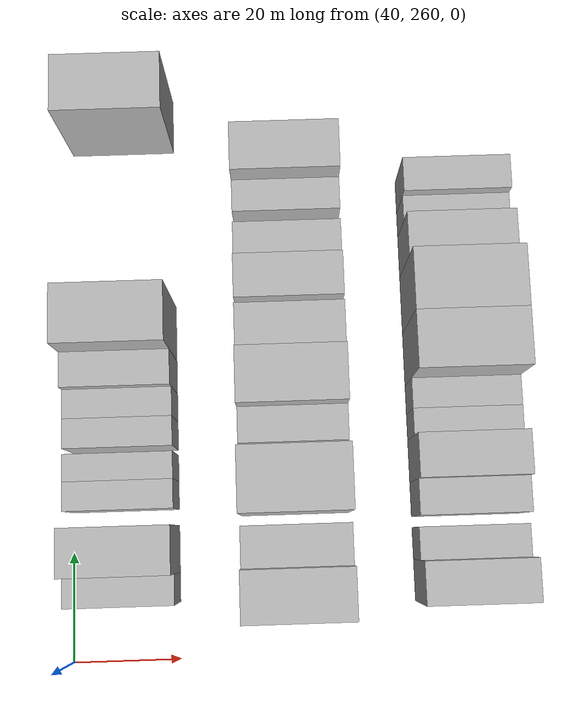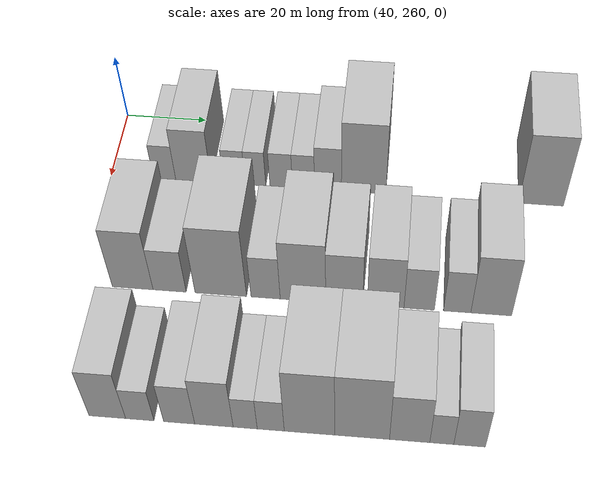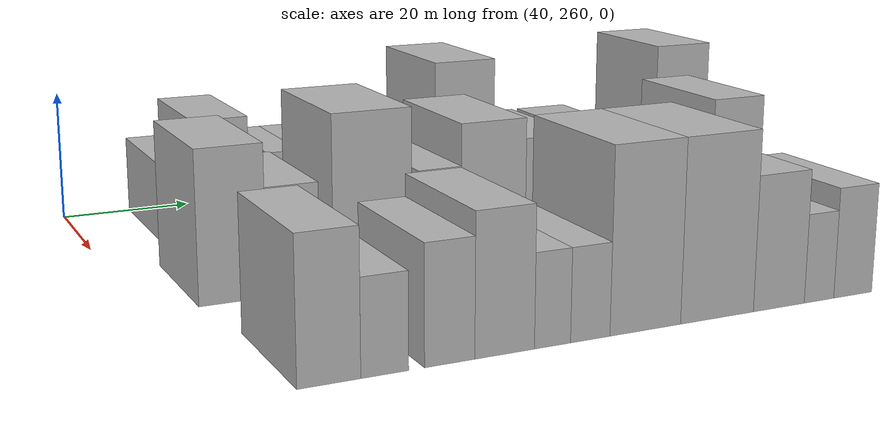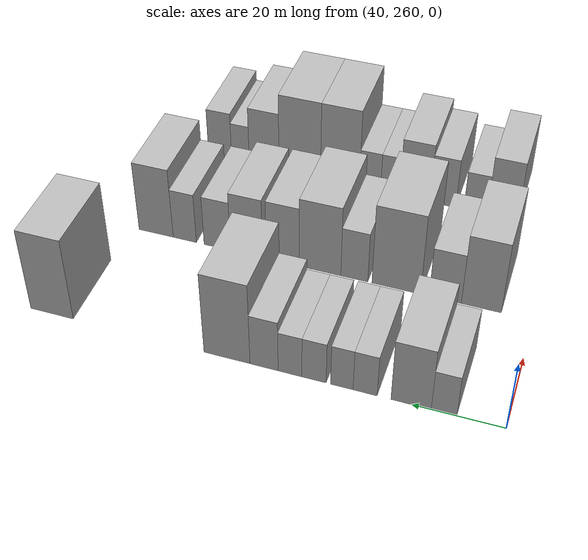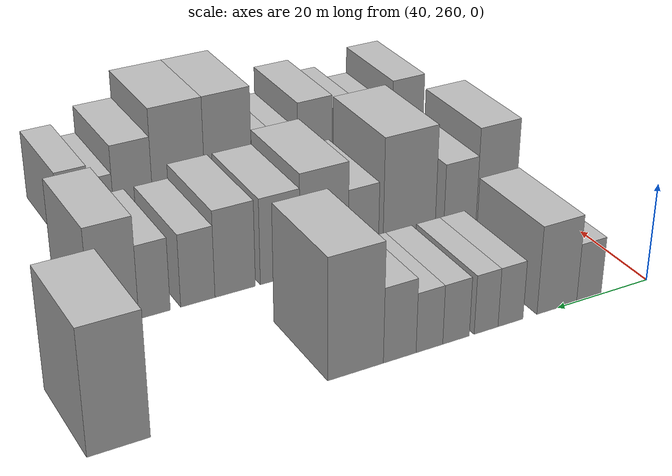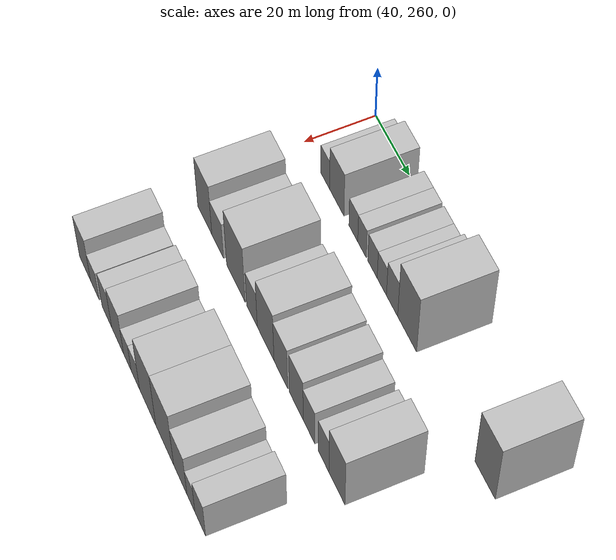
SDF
<sdf version="1.6">
 <world name="default">
  <model name="building_68">
   <static>1</static>
   <pose>50.0000 273.1495 0 0.000000 0.000000 0.000000</pose>
   <link name="link">
    <pose>0 0 6.00 0 0 0</pose>
    <collision name="collision"><geometry><box><size>20.0000 5.4594 12.0000</size></box></geometry></collision>
    <visual name="visual">
     <cast_shadows>0</cast_shadows>
     <geometry><box><size>20.0000 5.4594 12.0000</size></box></geometry>
     <material>
      <script>
       <uri>model://HANNAS_wall/materials/scripts</uri>
       <uri>model://HANNAS_wall/materials/textures</uri>
       <name>vrc/HANNAS_wall</name>
      </script>
     </material>
    </visual>
   </link>
  </model>
  <model name="building_69">
   <static>1</static>
   <pose>50.0000 280.2199 0 0.000000 0.000000 0.000000</pose>
   <link name="link">
    <pose>0 0 9.00 0 0 0</pose>
    <collision name="collision"><geometry><box><size>20.0000 8.6815 18.0000</size></box></geometry></collision>
    <visual name="visual">
     <cast_shadows>0</cast_shadows>
     <geometry><box><size>20.0000 8.6815 18.0000</size></box></geometry>
     <material>
      <script>
       <uri>model://HANNAS_wall/materials/scripts</uri>
       <uri>model://HANNAS_wall/materials/textures</uri>
       <name>vrc/HANNAS_wall</name>
      </script>
     </material>
    </visual>
   </link>
  </model>
  <model name="building_70">
   <static>1</static>
   <pose>50.0000 290.2087 0 0.000000 0.000000 0.000000</pose>
   <link name="link">
    <pose>0 0 6.00 0 0 0</pose>
    <collision name="collision"><geometry><box><size>20.0000 5.2961 12.0000</size></box></geometry></collision>
    <visual name="visual">
     <cast_shadows>0</cast_shadows>
     <geometry><box><size>20.0000 5.2961 12.0000</size></box></geometry>
     <material>
      <script>
       <uri>model://HANNAS_wall/materials/scripts</uri>
       <uri>model://HANNAS_wall/materials/textures</uri>
       <name>vrc/HANNAS_wall</name>
      </script>
     </material>
    </visual>
   </link>
  </model>
  <model name="building_71">
   <static>1</static>
   <pose>50.0000 295.3482 0 0.000000 0.000000 0.000000</pose>
   <link name="link">
    <pose>0 0 6.00 0 0 0</pose>
    <collision name="collision"><geometry><box><size>20.0000 4.9829 12.0000</size></box></geometry></collision>
    <visual name="visual">
     <cast_shadows>0</cast_shadows>
     <geometry><box><size>20.0000 4.9829 12.0000</size></box></geometry>
     <material>
      <script>
       <uri>model://HANNAS_wall/materials/scripts</uri>
       <uri>model://HANNAS_wall/materials/textures</uri>
       <name>vrc/HANNAS_wall</name>
      </script>
     </material>
    </visual>
   </link>
  </model>
  <model name="building_72">
   <static>1</static>
   <pose>50.0000 301.5589 0 0.000000 0.000000 0.000000</pose>
   <link name="link">
    <pose>0 0 6.00 0 0 0</pose>
    <collision name="collision"><geometry><box><size>20.0000 5.4385 12.0000</size></box></geometry></collision>
    <visual name="visual">
     <cast_shadows>0</cast_shadows>
     <geometry><box><size>20.0000 5.4385 12.0000</size></box></geometry>
     <material>
      <script>
       <uri>model://HANNAS_wall/materials/scripts</uri>
       <uri>model://HANNAS_wall/materials/textures</uri>
       <name>vrc/HANNAS_wall</name>
      </script>
     </material>
    </visual>
   </link>
  </model>
  <model name="building_73">
   <static>1</static>
   <pose>50.0000 306.9627 0 0.000000 0.000000 0.000000</pose>
   <link name="link">
    <pose>0 0 6.00 0 0 0</pose>
    <collision name="collision"><geometry><box><size>20.0000 5.3692 12.0000</size></box></geometry></collision>
    <visual name="visual">
     <cast_shadows>0</cast_shadows>
     <geometry><box><size>20.0000 5.3692 12.0000</size></box></geometry>
     <material>
      <script>
       <uri>model://HANNAS_wall/materials/scripts</uri>
       <uri>model://HANNAS_wall/materials/textures</uri>
       <name>vrc/HANNAS_wall</name>
      </script>
     </material>
    </visual>
   </link>
  </model>
  <model name="building_74">
   <static>1</static>
   <pose>50.0000 312.8742 0 0.000000 0.000000 0.000000</pose>
   <link name="link">
    <pose>0 0 7.50 0 0 0</pose>
    <collision name="collision"><geometry><box><size>20.0000 6.4538 15.0000</size></box></geometry></collision>
    <visual name="visual">
     <cast_shadows>0</cast_shadows>
     <geometry><box><size>20.0000 6.4538 15.0000</size></box></geometry>
     <material>
      <script>
       <uri>model://HANNAS_wall/materials/scripts</uri>
       <uri>model://HANNAS_wall/materials/textures</uri>
       <name>vrc/HANNAS_wall</name>
      </script>
     </material>
    </visual>
   </link>
  </model>
  <model name="building_75">
   <static>1</static>
   <pose>50.0000 321.4461 0 0.000000 0.000000 0.000000</pose>
   <link name="link">
    <pose>0 0 12.00 0 0 0</pose>
    <collision name="collision"><geometry><box><size>20.0000 10.6899 24.0000</size></box></geometry></collision>
    <visual name="visual">
     <cast_shadows>0</cast_shadows>
     <geometry><box><size>20.0000 10.6899 24.0000</size></box></geometry>
     <material>
      <script>
       <uri>model://HANNAS_wall/materials/scripts</uri>
       <uri>model://HANNAS_wall/materials/textures</uri>
       <name>vrc/HANNAS_wall</name>
      </script>
     </material>
    </visual>
   </link>
  </model>
  <model name="building_76">
   <static>1</static>
   <pose>50.0000 363.7140 0 0.000000 0.000000 0.000000</pose>
   <link name="link">
    <pose>0 0 12.00 0 0 0</pose>
    <collision name="collision"><geometry><box><size>20.0000 10.6154 24.0000</size></box></geometry></collision>
    <visual name="visual">
     <cast_shadows>0</cast_shadows>
     <geometry><box><size>20.0000 10.6154 24.0000</size></box></geometry>
     <material>
      <script>
       <uri>model://HANNAS_wall/materials/scripts</uri>
       <uri>model://HANNAS_wall/materials/textures</uri>
       <name>vrc/HANNAS_wall</name>
      </script>
     </material>
    </visual>
   </link>
  </model>
  <model name="building_145">
   <static>1</static>
   <pose>82.0000 271.8441 0 0.000000 0.000000 0.000000</pose>
   <link name="link">
    <pose>0 0 10.50 0 0 0</pose>
    <collision name="collision"><geometry><box><size>20.0000 9.2577 21.0000</size></box></geometry></collision>
    <visual name="visual">
     <cast_shadows>0</cast_shadows>
     <geometry><box><size>20.0000 9.2577 21.0000</size></box></geometry>
     <material>
      <script>
       <uri>model://HANNAS_wall/materials/scripts</uri>
       <uri>model://HANNAS_wall/materials/textures</uri>
       <name>vrc/HANNAS_wall</name>
      </script>
     </material>
    </visual>
   </link>
  </model>
  <model name="building_146">
   <static>1</static>
   <pose>82.0000 280.2176 0 0.000000 0.000000 0.000000</pose>
   <link name="link">
    <pose>0 0 7.50 0 0 0</pose>
    <collision name="collision"><geometry><box><size>20.0000 7.4893 15.0000</size></box></geometry></collision>
    <visual name="visual">
     <cast_shadows>0</cast_shadows>
     <geometry><box><size>20.0000 7.4893 15.0000</size></box></geometry>
     <material>
      <script>
       <uri>model://HANNAS_wall/materials/scripts</uri>
       <uri>model://HANNAS_wall/materials/textures</uri>
       <name>vrc/HANNAS_wall</name>
      </script>
     </material>
    </visual>
   </link>
  </model>
  <model name="building_147">
   <static>1</static>
   <pose>82.0000 291.7749 0 0.000000 0.000000 0.000000</pose>
   <link name="link">
    <pose>0 0 12.00 0 0 0</pose>
    <collision name="collision"><geometry><box><size>20.0000 11.6252 24.0000</size></box></geometry></collision>
    <visual name="visual">
     <cast_shadows>0</cast_shadows>
     <geometry><box><size>20.0000 11.6252 24.0000</size></box></geometry>
     <material>
      <script>
       <uri>model://HANNAS_wall/materials/scripts</uri>
       <uri>model://HANNAS_wall/materials/textures</uri>
       <name>vrc/HANNAS_wall</name>
      </script>
     </material>
    </visual>
   </link>
  </model>
  <model name="building_148">
   <static>1</static>
   <pose>82.0000 301.8624 0 0.000000 0.000000 0.000000</pose>
   <link name="link">
    <pose>0 0 7.50 0 0 0</pose>
    <collision name="collision"><geometry><box><size>20.0000 6.5497 15.0000</size></box></geometry></collision>
    <visual name="visual">
     <cast_shadows>0</cast_shadows>
     <geometry><box><size>20.0000 6.5497 15.0000</size></box></geometry>
     <material>
      <script>
       <uri>model://HANNAS_wall/materials/scripts</uri>
       <uri>model://HANNAS_wall/materials/textures</uri>
       <name>vrc/HANNAS_wall</name>
      </script>
     </material>
    </visual>
   </link>
  </model>
  <model name="building_149">
   <static>1</static>
   <pose>82.0000 310.2356 0 0.000000 0.000000 0.000000</pose>
   <link name="link">
    <pose>0 0 10.50 0 0 0</pose>
    <collision name="collision"><geometry><box><size>20.0000 10.1968 21.0000</size></box></geometry></collision>
    <visual name="visual">
     <cast_shadows>0</cast_shadows>
     <geometry><box><size>20.0000 10.1968 21.0000</size></box></geometry>
     <material>
      <script>
       <uri>model://HANNAS_wall/materials/scripts</uri>
       <uri>model://HANNAS_wall/materials/textures</uri>
       <name>vrc/HANNAS_wall</name>
      </script>
     </material>
    </visual>
   </link>
  </model>
  <model name="building_150">
   <static>1</static>
   <pose>82.0000 319.4505 0 0.000000 0.000000 0.000000</pose>
   <link name="link">
    <pose>0 0 9.00 0 0 0</pose>
    <collision name="collision"><geometry><box><size>20.0000 8.2329 18.0000</size></box></geometry></collision>
    <visual name="visual">
     <cast_shadows>0</cast_shadows>
     <geometry><box><size>20.0000 8.2329 18.0000</size></box></geometry>
     <material>
      <script>
       <uri>model://HANNAS_wall/materials/scripts</uri>
       <uri>model://HANNAS_wall/materials/textures</uri>
       <name>vrc/HANNAS_wall</name>
      </script>
     </material>
    </visual>
   </link>
  </model>
  <model name="building_151">
   <static>1</static>
   <pose>82.0000 328.6269 0 0.000000 0.000000 0.000000</pose>
   <link name="link">
    <pose>0 0 9.00 0 0 0</pose>
    <collision name="collision"><geometry><box><size>20.0000 8.1199 18.0000</size></box></geometry></collision>
    <visual name="visual">
     <cast_shadows>0</cast_shadows>
     <geometry><box><size>20.0000 8.1199 18.0000</size></box></geometry>
     <material>
      <script>
       <uri>model://HANNAS_wall/materials/scripts</uri>
       <uri>model://HANNAS_wall/materials/textures</uri>
       <name>vrc/HANNAS_wall</name>
      </script>
     </material>
    </visual>
   </link>
  </model>
  <model name="building_152">
   <static>1</static>
   <pose>82.0000 336.0579 0 0.000000 0.000000 0.000000</pose>
   <link name="link">
    <pose>0 0 7.50 0 0 0</pose>
    <collision name="collision"><geometry><box><size>20.0000 6.7422 15.0000</size></box></geometry></collision>
    <visual name="visual">
     <cast_shadows>0</cast_shadows>
     <geometry><box><size>20.0000 6.7422 15.0000</size></box></geometry>
     <material>
      <script>
       <uri>model://HANNAS_wall/materials/scripts</uri>
       <uri>model://HANNAS_wall/materials/textures</uri>
       <name>vrc/HANNAS_wall</name>
      </script>
     </material>
    </visual>
   </link>
  </model>
  <model name="building_153">
   <static>1</static>
   <pose>82.0000 344.4405 0 0.000000 0.000000 0.000000</pose>
   <link name="link">
    <pose>0 0 7.50 0 0 0</pose>
    <collision name="collision"><geometry><box><size>20.0000 6.0230 15.0000</size></box></geometry></collision>
    <visual name="visual">
     <cast_shadows>0</cast_shadows>
     <geometry><box><size>20.0000 6.0230 15.0000</size></box></geometry>
     <material>
      <script>
       <uri>model://HANNAS_wall/materials/scripts</uri>
       <uri>model://HANNAS_wall/materials/textures</uri>
       <name>vrc/HANNAS_wall</name>
      </script>
     </material>
    </visual>
   </link>
  </model>
  <model name="building_154">
   <static>1</static>
   <pose>82.0000 351.9425 0 0.000000 0.000000 0.000000</pose>
   <link name="link">
    <pose>0 0 10.50 0 0 0</pose>
    <collision name="collision"><geometry><box><size>20.0000 8.9811 21.0000</size></box></geometry></collision>
    <visual name="visual">
     <cast_shadows>0</cast_shadows>
     <geometry><box><size>20.0000 8.9811 21.0000</size></box></geometry>
     <material>
      <script>
       <uri>model://HANNAS_wall/materials/scripts</uri>
       <uri>model://HANNAS_wall/materials/textures</uri>
       <name>vrc/HANNAS_wall</name>
      </script>
     </material>
    </visual>
   </link>
  </model>
  <model name="building_224">
   <static>1</static>
   <pose>114.0000 273.0497 0 0.000000 0.000000 0.000000</pose>
   <link name="link">
    <pose>0 0 9.00 0 0 0</pose>
    <collision name="collision"><geometry><box><size>20.0000 7.6686 18.0000</size></box></geometry></collision>
    <visual name="visual">
     <cast_shadows>0</cast_shadows>
     <geometry><box><size>20.0000 7.6686 18.0000</size></box></geometry>
     <material>
      <script>
       <uri>model://HANNAS_wall/materials/scripts</uri>
       <uri>model://HANNAS_wall/materials/textures</uri>
       <name>vrc/HANNAS_wall</name>
      </script>
     </material>
    </visual>
   </link>
  </model>
  <model name="building_225">
   <static>1</static>
   <pose>114.0000 279.8426 0 0.000000 0.000000 0.000000</pose>
   <link name="link">
    <pose>0 0 6.00 0 0 0</pose>
    <collision name="collision"><geometry><box><size>20.0000 5.9171 12.0000</size></box></geometry></collision>
    <visual name="visual">
     <cast_shadows>0</cast_shadows>
     <geometry><box><size>20.0000 5.9171 12.0000</size></box></geometry>
     <material>
      <script>
       <uri>model://HANNAS_wall/materials/scripts</uri>
       <uri>model://HANNAS_wall/materials/textures</uri>
       <name>vrc/HANNAS_wall</name>
      </script>
     </material>
    </visual>
   </link>
  </model>
  <model name="building_226">
   <static>1</static>
   <pose>114.0000 288.0462 0 0.000000 0.000000 0.000000</pose>
   <link name="link">
    <pose>0 0 7.50 0 0 0</pose>
    <collision name="collision"><geometry><box><size>20.0000 6.4901 15.0000</size></box></geometry></collision>
    <visual name="visual">
     <cast_shadows>0</cast_shadows>
     <geometry><box><size>20.0000 6.4901 15.0000</size></box></geometry>
     <material>
      <script>
       <uri>model://HANNAS_wall/materials/scripts</uri>
       <uri>model://HANNAS_wall/materials/textures</uri>
       <name>vrc/HANNAS_wall</name>
      </script>
     </material>
    </visual>
   </link>
  </model>
  <model name="building_227">
   <static>1</static>
   <pose>114.0000 295.2704 0 0.000000 0.000000 0.000000</pose>
   <link name="link">
    <pose>0 0 9.00 0 0 0</pose>
    <collision name="collision"><geometry><box><size>20.0000 7.9583 18.0000</size></box></geometry></collision>
    <visual name="visual">
     <cast_shadows>0</cast_shadows>
     <geometry><box><size>20.0000 7.9583 18.0000</size></box></geometry>
     <material>
      <script>
       <uri>model://HANNAS_wall/materials/scripts</uri>
       <uri>model://HANNAS_wall/materials/textures</uri>
       <name>vrc/HANNAS_wall</name>
      </script>
     </material>
    </visual>
   </link>
  </model>
  <model name="building_228">
   <static>1</static>
   <pose>114.0000 301.7336 0 0.000000 0.000000 0.000000</pose>
   <link name="link">
    <pose>0 0 6.00 0 0 0</pose>
    <collision name="collision"><geometry><box><size>20.0000 4.9682 12.0000</size></box></geometry></collision>
    <visual name="visual">
     <cast_shadows>0</cast_shadows>
     <geometry><box><size>20.0000 4.9682 12.0000</size></box></geometry>
     <material>
      <script>
       <uri>model://HANNAS_wall/materials/scripts</uri>
       <uri>model://HANNAS_wall/materials/textures</uri>
       <name>vrc/HANNAS_wall</name>
      </script>
     </material>
    </visual>
   </link>
  </model>
  <model name="building_229">
   <static>1</static>
   <pose>114.0000 306.9988 0 0.000000 0.000000 0.000000</pose>
   <link name="link">
    <pose>0 0 6.00 0 0 0</pose>
    <collision name="collision"><geometry><box><size>20.0000 5.5621 12.0000</size></box></geometry></collision>
    <visual name="visual">
     <cast_shadows>0</cast_shadows>
     <geometry><box><size>20.0000 5.5621 12.0000</size></box></geometry>
     <material>
      <script>
       <uri>model://HANNAS_wall/materials/scripts</uri>
       <uri>model://HANNAS_wall/materials/textures</uri>
       <name>vrc/HANNAS_wall</name>
      </script>
     </material>
    </visual>
   </link>
  </model>
  <model name="building_230">
   <static>1</static>
   <pose>114.0000 314.9546 0 0.000000 0.000000 0.000000</pose>
   <link name="link">
    <pose>0 0 12.00 0 0 0</pose>
    <collision name="collision"><geometry><box><size>20.0000 10.3496 24.0000</size></box></geometry></collision>
    <visual name="visual">
     <cast_shadows>0</cast_shadows>
     <geometry><box><size>20.0000 10.3496 24.0000</size></box></geometry>
     <material>
      <script>
       <uri>model://HANNAS_wall/materials/scripts</uri>
       <uri>model://HANNAS_wall/materials/textures</uri>
       <name>vrc/HANNAS_wall</name>
      </script>
     </material>
    </visual>
   </link>
  </model>
  <model name="building_231">
   <static>1</static>
   <pose>114.0000 325.7316 0 0.000000 0.000000 0.000000</pose>
   <link name="link">
    <pose>0 0 12.00 0 0 0</pose>
    <collision name="collision"><geometry><box><size>20.0000 11.2045 24.0000</size></box></geometry></collision>
    <visual name="visual">
     <cast_shadows>0</cast_shadows>
     <geometry><box><size>20.0000 11.2045 24.0000</size></box></geometry>
     <material>
      <script>
       <uri>model://HANNAS_wall/materials/scripts</uri>
       <uri>model://HANNAS_wall/materials/textures</uri>
       <name>vrc/HANNAS_wall</name>
      </script>
     </material>
    </visual>
   </link>
  </model>
  <model name="building_232">
   <static>1</static>
   <pose>114.0000 335.4250 0 0.000000 0.000000 0.000000</pose>
   <link name="link">
    <pose>0 0 9.00 0 0 0</pose>
    <collision name="collision"><geometry><box><size>20.0000 8.1823 18.0000</size></box></geometry></collision>
    <visual name="visual">
     <cast_shadows>0</cast_shadows>
     <geometry><box><size>20.0000 8.1823 18.0000</size></box></geometry>
     <material>
      <script>
       <uri>model://HANNAS_wall/materials/scripts</uri>
       <uri>model://HANNAS_wall/materials/textures</uri>
       <name>vrc/HANNAS_wall</name>
      </script>
     </material>
    </visual>
   </link>
  </model>
  <model name="building_233">
   <static>1</static>
   <pose>114.0000 341.9520 0 0.000000 0.000000 0.000000</pose>
   <link name="link">
    <pose>0 0 6.00 0 0 0</pose>
    <collision name="collision"><geometry><box><size>20.0000 4.8717 12.0000</size></box></geometry></collision>
    <visual name="visual">
     <cast_shadows>0</cast_shadows>
     <geometry><box><size>20.0000 4.8717 12.0000</size></box></geometry>
     <material>
      <script>
       <uri>model://HANNAS_wall/materials/scripts</uri>
       <uri>model://HANNAS_wall/materials/textures</uri>
       <name>vrc/HANNAS_wall</name>
      </script>
     </material>
    </visual>
   </link>
  </model>
  <model name="building_234">
   <static>1</static>
   <pose>114.0000 347.5921 0 0.000000 0.000000 0.000000</pose>
   <link name="link">
    <pose>0 0 7.50 0 0 0</pose>
    <collision name="collision"><geometry><box><size>20.0000 6.4086 15.0000</size></box></geometry></collision>
    <visual name="visual">
     <cast_shadows>0</cast_shadows>
     <geometry><box><size>20.0000 6.4086 15.0000</size></box></geometry>
     <material>
      <script>
       <uri>model://HANNAS_wall/materials/scripts</uri>
       <uri>model://HANNAS_wall/materials/textures</uri>
       <name>vrc/HANNAS_wall</name>
      </script>
     </material>
    </visual>
   </link>
  </model>
 </world>
</sdf>
